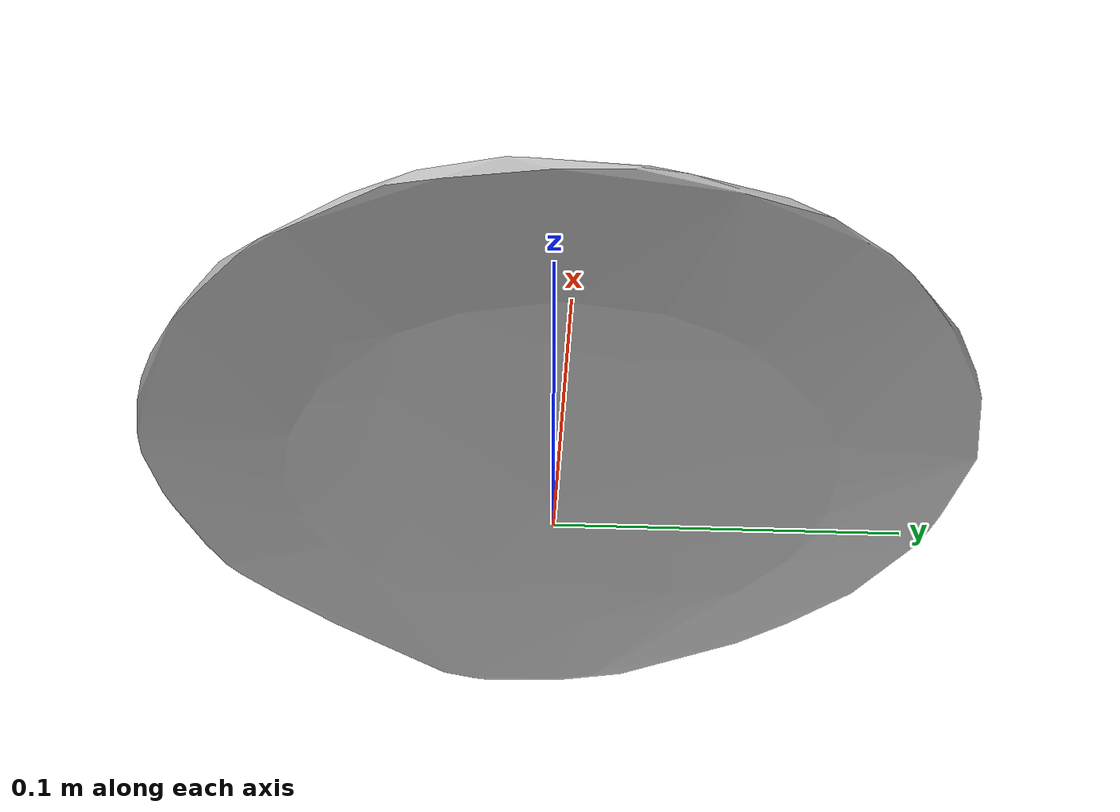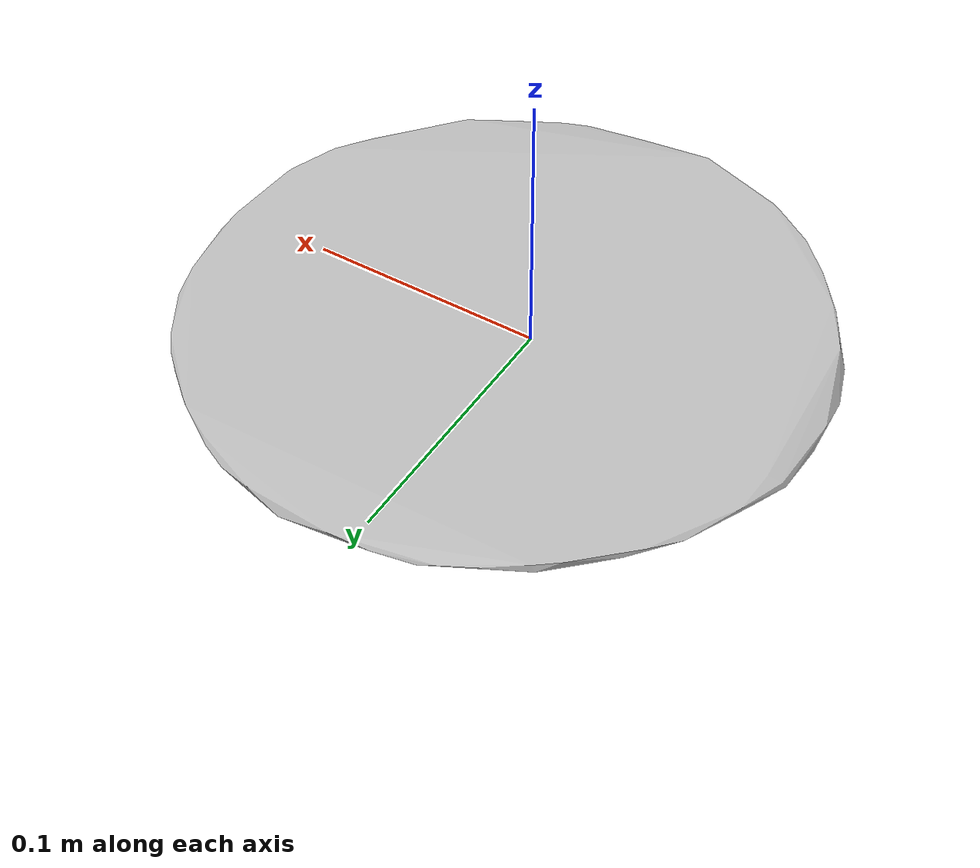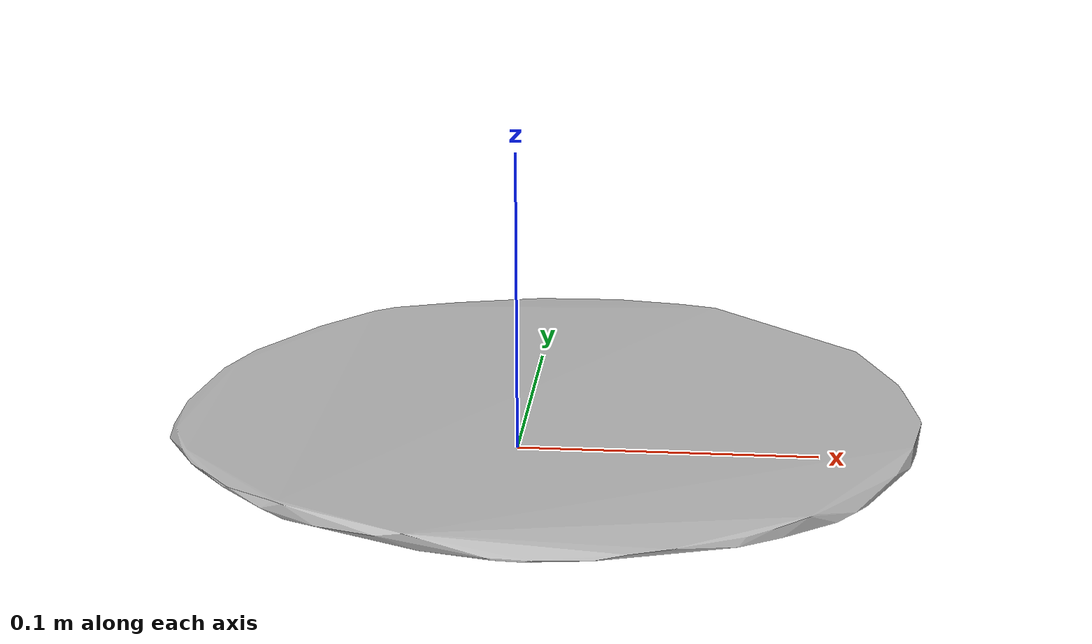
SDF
<?xml version='1.0'?>
<sdf version="1.4">
  <model name="paper_plate">
    <static>false</static>
    <link name="link">
      <inertial>
        <pose>0.009952806780824882 -0.0007016337049928145 0.014590000699496513 -1.9427441385064759 -1.5660664217362312 2.124134758560852</pose>
        <mass>0.04721181631708255</mass>
        <inertia>
          <ixx>0.0002722512254842118</ixx>
          <ixy>-1.1088783238891514e-21</ixy>
          <ixz>3.866494770655319e-21</ixz>
          <iyy>0.00014096080149980132</iyy>
          <iyz>1.692685805381237e-20</iyz>
          <izz>0.00013259311287039345</izz>
        </inertia>
      </inertial>
      <collision name="collision">
        <geometry>
          <mesh>
            <!-- Use a downsampled mesh for collisions -->
            <uri>model:///paper_plate/paper_plate_250_collision.obj</uri>
	        </mesh>
        </geometry>
        <surface>
      </surface>
      </collision>
      <visual name="visual">
        <geometry>
          <mesh>
            <uri>model:///paper_plate/optimized_tsdf_texture_mapped_mesh.obj</uri>
	        </mesh>
        </geometry>
        <material>
          <script>
            <uri>model:///paper_plate/paper_plate.material</uri>
            <name>paper_plate</name>
          </script>
        </material>
      </visual>
    </link>
  </model>
</sdf>
